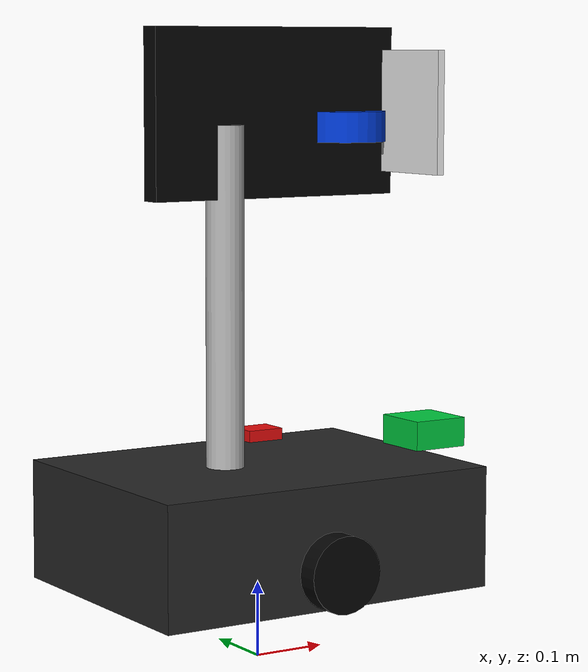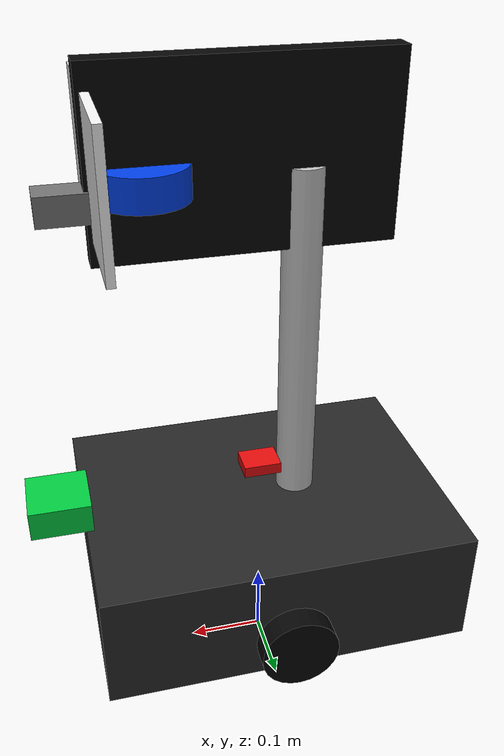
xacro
<?xml version="1.0"?>
<robot name="pusantara" xmlns:xacro="http://www.ros.org/wiki/xacro">

  <!-- Basic colors              -->

  <material name="black">
    <color rgba="0.02 0.02 0.02 1"/>
  </material>

  <material name="dark_gray">
    <color rgba="0.15 0.15 0.15 1"/>
  </material>

  <material name="gray">
    <color rgba="0.45 0.45 0.45 1"/>
  </material>

  <material name="silver">
    <color rgba="0.75 0.75 0.75 1"/>
  </material>

  <material name="blue">
    <color rgba="0.0 0.25 0.9 1"/>
  </material>

  <material name="green">
    <color rgba="0.0 0.8 0.25 1"/>
  </material>

  <material name="red">
    <color rgba="0.9 0.05 0.05 1"/>
  </material>

  <material name="white">
    <color rgba="0.95 0.95 0.95 1"/>
  </material>

  <!-- Base footprint            -->

  <link name="base_footprint"/>

  <joint name="base_footprint_to_base_link" type="fixed">
    <parent link="base_footprint"/>
    <child link="base_link"/>
    <origin xyz="0 0 0.10" rpy="0 0 0"/>
  </joint>

  <!-- Main robot base           -->

  <link name="base_link">
    <visual>
      <origin xyz="0 0 0.08" rpy="0 0 0"/>
      <geometry>
        <box size="0.48 0.36 0.16"/>
      </geometry>
      <material name="dark_gray"/>
    </visual>

    <collision>
      <origin xyz="0 0 0.08" rpy="0 0 0"/>
      <geometry>
        <box size="0.48 0.36 0.16"/>
      </geometry>
    </collision>

    <inertial>
      <origin xyz="0 0 0.08" rpy="0 0 0"/>
      <mass value="8.0"/>
      <inertia ixx="0.15" ixy="0.0" ixz="0.0"
               iyy="0.20" iyz="0.0"
               izz="0.25"/>
    </inertial>
  </link>

  <!-- Front direction marker -->
  <link name="front_marker">
    <visual>
      <origin xyz="0.27 0 0.18" rpy="0 0 0"/>
      <geometry>
        <box size="0.08 0.08 0.04"/>
      </geometry>
      <material name="green"/>
    </visual>
  </link>

  <joint name="front_marker_joint" type="fixed">
    <parent link="base_link"/>
    <child link="front_marker"/>
    <origin xyz="0 0 0" rpy="0 0 0"/>
  </joint>

  <!-- Wheels                    -->

  <link name="left_wheel">
    <visual>
      <origin xyz="0 0 0" rpy="1.5708 0 0"/>
      <geometry>
        <cylinder radius="0.05" length="0.04"/>
      </geometry>
      <material name="black"/>
    </visual>

    <collision>
      <origin xyz="0 0 0" rpy="1.5708 0 0"/>
      <geometry>
        <cylinder radius="0.05" length="0.04"/>
      </geometry>
    </collision>

    <inertial>
      <mass value="0.3"/>
      <inertia ixx="0.001" ixy="0.0" ixz="0.0"
               iyy="0.001" iyz="0.0"
               izz="0.001"/>
    </inertial>
  </link>

  <joint name="left_wheel_joint" type="continuous">
    <parent link="base_link"/>
    <child link="left_wheel"/>
    <origin xyz="0 0.19 0.05" rpy="0 0 0"/>
    <axis xyz="0 1 0"/>
  </joint>

  <link name="right_wheel">
    <visual>
      <origin xyz="0 0 0" rpy="1.5708 0 0"/>
      <geometry>
        <cylinder radius="0.05" length="0.04"/>
      </geometry>
      <material name="black"/>
    </visual>

    <collision>
      <origin xyz="0 0 0" rpy="1.5708 0 0"/>
      <geometry>
        <cylinder radius="0.05" length="0.04"/>
      </geometry>
    </collision>

    <inertial>
      <mass value="0.3"/>
      <inertia ixx="0.001" ixy="0.0" ixz="0.0"
               iyy="0.001" iyz="0.0"
               izz="0.001"/>
    </inertial>
  </link>

  <joint name="right_wheel_joint" type="continuous">
    <parent link="base_link"/>
    <child link="right_wheel"/>
    <origin xyz="0 -0.19 0.05" rpy="0 0 0"/>
    <axis xyz="0 1 0"/>
  </joint>

  <!-- Caster wheels             -->

  <link name="front_caster">
    <visual>
      <origin xyz="0.19 0 0.025" rpy="0 0 0"/>
      <geometry>
        <sphere radius="0.025"/>
      </geometry>
      <material name="gray"/>
    </visual>
  </link>

  <joint name="front_caster_joint" type="fixed">
    <parent link="base_link"/>
    <child link="front_caster"/>
    <origin xyz="0 0 0" rpy="0 0 0"/>
  </joint>

  <link name="rear_caster">
    <visual>
      <origin xyz="-0.19 0 0.025" rpy="0 0 0"/>
      <geometry>
        <sphere radius="0.025"/>
      </geometry>
      <material name="gray"/>
    </visual>
  </link>

  <joint name="rear_caster_joint" type="fixed">
    <parent link="base_link"/>
    <child link="rear_caster"/>
    <origin xyz="0 0 0" rpy="0 0 0"/>
  </joint>

  <!-- Upper body / screen       -->

  <link name="screen_pole">
    <visual>
      <origin xyz="0 0 0.38" rpy="0 0 0"/>
      <geometry>
        <cylinder radius="0.025" length="0.45"/>
      </geometry>
      <material name="silver"/>
    </visual>
  </link>

  <joint name="screen_pole_joint" type="fixed">
    <parent link="base_link"/>
    <child link="screen_pole"/>
    <origin xyz="-0.05 0 0" rpy="0 0 0"/>
  </joint>

  <link name="screen_link">
    <visual>
      <origin xyz="0 0 0.62" rpy="0 0 0"/>
      <geometry>
        <box size="0.36 0.03 0.22"/>
      </geometry>
      <material name="black"/>
    </visual>
  </link>

  <joint name="screen_joint" type="fixed">
    <parent link="base_link"/>
    <child link="screen_link"/>
    <origin xyz="0.02 0 0" rpy="0 0 0"/>
  </joint>

  <!-- Simple white screen face -->
  <link name="screen_display">
    <visual>
      <origin xyz="0.19 0 0.62" rpy="0 0 0"/>
      <geometry>
        <box size="0.01 0.28 0.16"/>
      </geometry>
      <material name="white"/>
    </visual>
  </link>

  <joint name="screen_display_joint" type="fixed">
    <parent link="base_link"/>
    <child link="screen_display"/>
    <origin xyz="0 0 0" rpy="0 0 0"/>
  </joint>

  <!-- LiDAR                     -->
  <!-- Your current TF uses:
       base_link -> laser
       x=0.135, y=0, z=0.60
       yaw=0
  ========================= -->

  <link name="laser">
    <visual>
      <origin xyz="0 0 0" rpy="0 0 0"/>
      <geometry>
        <cylinder radius="0.055" length="0.04"/>
      </geometry>
      <material name="blue"/>
    </visual>

    <collision>
      <geometry>
        <cylinder radius="0.055" length="0.04"/>
      </geometry>
    </collision>

    <inertial>
      <mass value="0.2"/>
      <inertia ixx="0.001" ixy="0.0" ixz="0.0"
               iyy="0.001" iyz="0.0"
               izz="0.001"/>
    </inertial>
  </link>

  <joint name="laser_joint" type="fixed">
    <parent link="base_link"/>
    <child link="laser"/>
    <origin xyz="0.135 0 0.60" rpy="0 0 0"/>
  </joint>

  <!-- IMU                       -->

  <link name="imu_link">
    <visual>
      <origin xyz="0 0 0" rpy="0 0 0"/>
      <geometry>
        <box size="0.05 0.04 0.015"/>
      </geometry>
      <material name="red"/>
    </visual>

    <inertial>
      <mass value="0.05"/>
      <inertia ixx="0.0001" ixy="0.0" ixz="0.0"
               iyy="0.0001" iyz="0.0"
               izz="0.0001"/>
    </inertial>
  </link>

  <joint name="imu_joint" type="fixed">
    <parent link="base_link"/>
    <child link="imu_link"/>
    <origin xyz="0 0 0.20" rpy="0 0 0"/>
  </joint>

  <!-- Camera                    -->

  <link name="camera_link">
    <visual>
      <origin xyz="0 0 0" rpy="0 0 0"/>
      <geometry>
        <box size="0.07 0.04 0.035"/>
      </geometry>
      <material name="gray"/>
    </visual>

    <inertial>
      <mass value="0.1"/>
      <inertia ixx="0.0001" ixy="0.0" ixz="0.0"
               iyy="0.0001" iyz="0.0"
               izz="0.0001"/>
    </inertial>
  </link>

  <joint name="camera_joint" type="fixed">
    <parent link="base_link"/>
    <child link="camera_link"/>
    <origin xyz="0.22 0 0.58" rpy="0 0 0"/>
  </joint>

  <link name="camera_optical_frame"/>

  <joint name="camera_optical_joint" type="fixed">
    <parent link="camera_link"/>
    <child link="camera_optical_frame"/>
    <origin xyz="0.035 0 0" rpy="-1.5708 0 -1.5708"/>
  </joint>

</robot>
